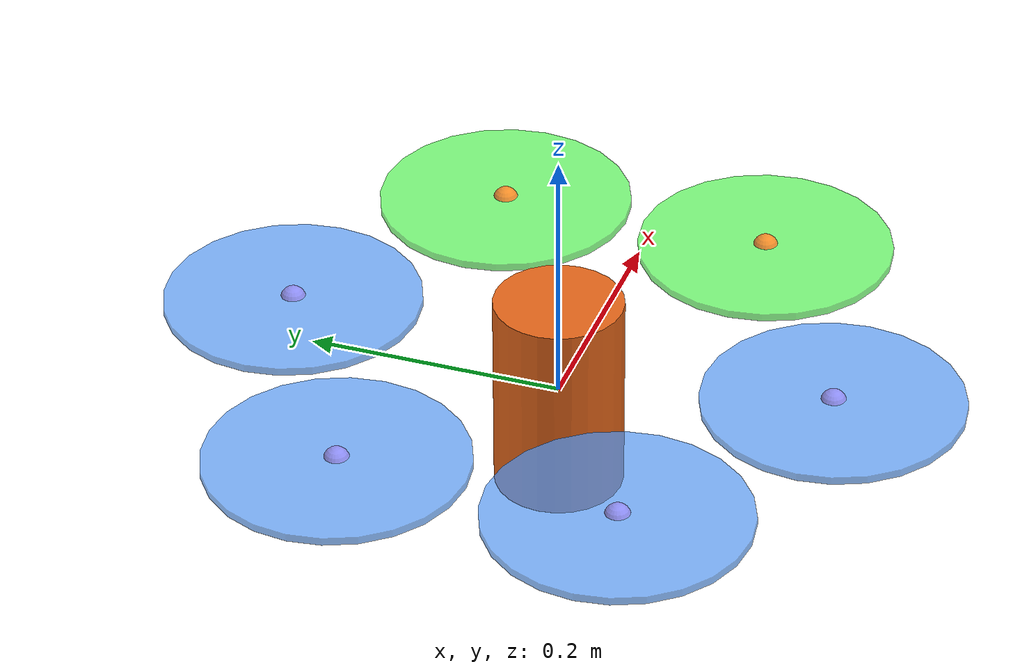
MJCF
<mujoco model="firefly">
  <compiler angle="radian" meshdir="meshes/"/>

  <asset>
    <texture name="texplane" type="2d" builtin="flat" rgb1="0.95 0.95 0.95" width="5120" height="5120"/>
    <material name="MatPlane" texture="texplane" texrepeat="1 1" texuniform="true" reflectance="0"/>
  </asset>

  <default>
    <light castshadow="false"/>
    <geom rgba="0.8 0.8 0.8 1"/>

    <default class="firefly">
      <joint limited="true" range="-1.5 1.5" damping="0.1" armature="0.001"/>
      <geom contype="1" conaffinity="1" condim="4" group="1" margin="0.001"/>

      <default class="main_body">
        <geom contype="0" conaffinity="0" group="1" rgba="0.9 0.4 0.1 1" mass="0"/>
      </default>

      <default class="blade">
        <geom contype="0" conaffinity="0" group="1" rgba="0.3 1 0.3 1" mass="0"/>
      </default>

      <default class="rotor_joint">
        <joint type="hinge" limited="false" damping="0.02" armature="0.0005"/>
      </default>

      <default class="collision">
        <geom contype="1" conaffinity="1" group="4" rgba="1 0.3 1 0.5" friction="2 0.0005 0.00001"/>
      </default>
    </default>
  </default>

  <visual>
    <headlight ambient="0.5 0.5 0.5"/>
  </visual>

  <worldbody>
    <light pos="0 0 1000" directional="false" diffuse="0.3 0.3 0.3" specular="0.3 0.3 0.3"/>

    <body name="drone_frame" pos="0 0 0">
      <joint name="drone_free" type="free"/>
      <body name="camera" pos="-0.5 0 0" euler="0 0 -1.570796">
        <camera name="indi_eye_camera" pos="0 0 0" fovy="90"/>
      </body>

      <body name="Drone" childclass="firefly" pos="0 0 0">
        <site name="drone_body_center_site" pos="0 0 0" group="3" size="0.01" rgba="1 1 0 0.8"/>
        <site name="drone_forward_site" pos="0.215 0 0" size="0.008" group="3" rgba="0 1 0 0.8"/>
        <site name="drone_up_site" pos="0 0 0.1" size="0.008" group="3" rgba="0 0.7 1 0.8"/>

        <inertial pos="0 0 0" mass="1.5" diaginertia="0.0347563 0.0458929 0.0806492"/>

        <geom name="body_visual" class="main_body" type="cylinder" size="0.05 0.08" rgba="0.9 0.4 0.1 1"/>
        <geom name="body_col_1" class="collision" type="cylinder" size="0.052 0.082"/>
        <geom name="arm_col_fl" class="collision" type="capsule" size="0.008 0.105"
              pos="0.093 0.054 0" quat="0.866025 0 0 0.5"/>
        <geom name="arm_col_l" class="collision" type="capsule" size="0.008 0.1075"
              pos="0 0.1075 0"/>
        <geom name="arm_col_bl" class="collision" type="capsule" size="0.008 0.105"
              pos="-0.093 0.054 0" quat="0.866025 0 0 -0.5"/>
        <geom name="arm_col_br" class="collision" type="capsule" size="0.008 0.105"
              pos="-0.093 -0.054 0" quat="0.866025 0 0 0.5"/>
        <geom name="arm_col_r" class="collision" type="capsule" size="0.008 0.1075"
              pos="0 -0.1075 0"/>
        <geom name="arm_col_fr" class="collision" type="capsule" size="0.008 0.105"
              pos="0.093 -0.054 0" quat="0.866025 0 0 -0.5"/>

        <body name="front_left_rotor" pos="0.186195 0.1075 0.037">
          <inertial pos="0 0 0" mass="0.005" diaginertia="1.667e-05 1.667e-05 3.125e-05"/>
          <joint class="rotor_joint" name="FL_joint" pos="0 0 0" axis="0 0 1"/>
          <site name="rotor_fl_site" pos="0 0 0" size="0.01" rgba="1 0.5 0 0.8"/>
          <geom class="blade" type="cylinder" size="0.1 0.003" rgba="0.3 1 0.3 0.7"/>
          <geom name="FL_rotor_col" class="collision" type="cylinder" size="0.1 0.005"/>
        </body>

        <body name="left_rotor" pos="0 0.215 0.037">
          <inertial pos="0 0 0" mass="0.005" diaginertia="1.667e-05 1.667e-05 3.125e-05"/>
          <joint class="rotor_joint" name="L_joint" pos="0 0 0" axis="0 0 1"/>
          <site name="rotor_l_site" pos="0 0 0" size="0.01" rgba="0.5 0.5 1 0.8"/>
          <geom class="blade" type="cylinder" size="0.1 0.003" rgba="0.3 0.6 1 0.7"/>
          <geom name="L_rotor_col" class="collision" type="cylinder" size="0.1 0.005"/>
        </body>

        <body name="back_left_rotor" pos="-0.186195 0.1075 0.037">
          <inertial pos="0 0 0" mass="0.005" diaginertia="1.667e-05 1.667e-05 3.125e-05"/>
          <joint class="rotor_joint" name="BL_joint" pos="0 0 0" axis="0 0 1"/>
          <site name="rotor_bl_site" pos="0 0 0" size="0.01" rgba="0.5 0.5 1 0.8"/>
          <geom class="blade" type="cylinder" size="0.1 0.003" rgba="0.3 0.6 1 0.7"/>
          <geom name="BL_rotor_col" class="collision" type="cylinder" size="0.1 0.005"/>
        </body>

        <body name="back_right_rotor" pos="-0.186195 -0.1075 0.037">
          <inertial pos="0 0 0" mass="0.005" diaginertia="1.667e-05 1.667e-05 3.125e-05"/>
          <joint class="rotor_joint" name="BR_joint" pos="0 0 0" axis="0 0 1"/>
          <site name="rotor_br_site" pos="0 0 0" size="0.01" rgba="0.5 0.5 1 0.8"/>
          <geom class="blade" type="cylinder" size="0.1 0.003" rgba="0.3 0.6 1 0.7"/>
          <geom name="BR_rotor_col" class="collision" type="cylinder" size="0.1 0.005"/>
        </body>

        <body name="right_rotor" pos="0 -0.215 0.037">
          <inertial pos="0 0 0" mass="0.005" diaginertia="1.667e-05 1.667e-05 3.125e-05"/>
          <joint class="rotor_joint" name="R_joint" pos="0 0 0" axis="0 0 1"/>
          <site name="rotor_r_site" pos="0 0 0" size="0.01" rgba="0.5 0.5 1 0.8"/>
          <geom class="blade" type="cylinder" size="0.1 0.003" rgba="0.3 0.6 1 0.7"/>
          <geom name="R_rotor_col" class="collision" type="cylinder" size="0.1 0.005"/>
        </body>

        <body name="front_right_rotor" pos="0.18601 -0.1075 0.037">
          <inertial pos="0 0 0" mass="0.005" diaginertia="1.667e-05 1.667e-05 3.125e-05"/>
          <joint class="rotor_joint" name="FR_joint" pos="0 0 0" axis="0 0 1"/>
          <site name="rotor_fr_site" pos="0 0 0" size="0.01" rgba="1 0.5 0 0.8"/>
          <geom class="blade" type="cylinder" size="0.1 0.003" rgba="0.3 1 0.3 0.7"/>
          <geom name="FR_rotor_col" class="collision" type="cylinder" size="0.1 0.005"/>
        </body>
      </body>
    </body>
  </worldbody>

  <sensor>
    <gyro name="body_gyro" site="drone_body_center_site"/>
    <accelerometer name="body_linacc" site="drone_body_center_site"/>
    <framequat name="body_quat" objtype="site" objname="drone_body_center_site"/>
  </sensor>
</mujoco>
